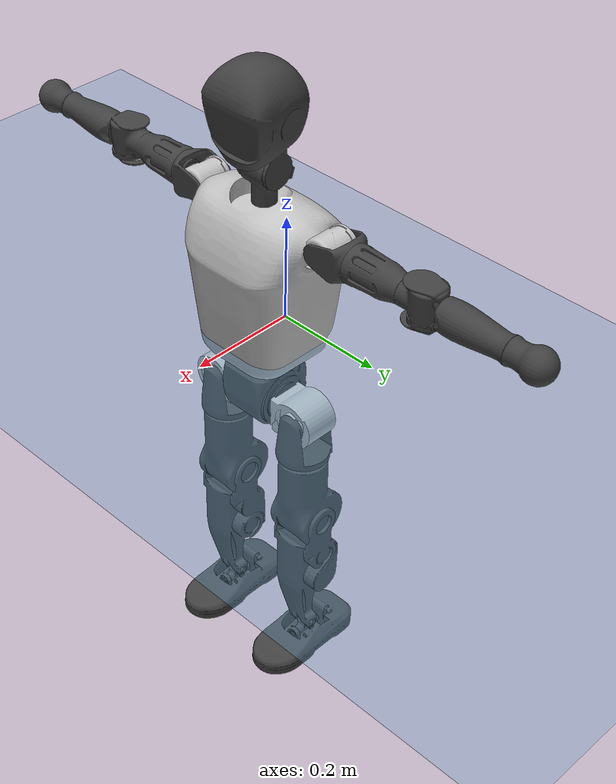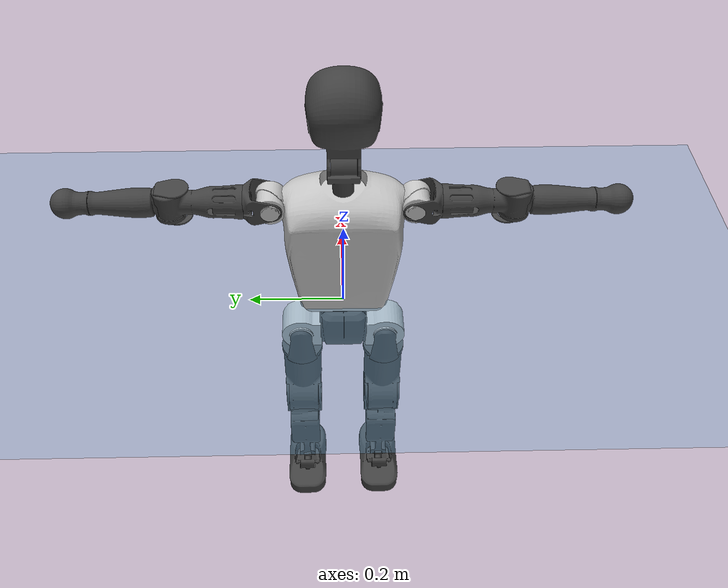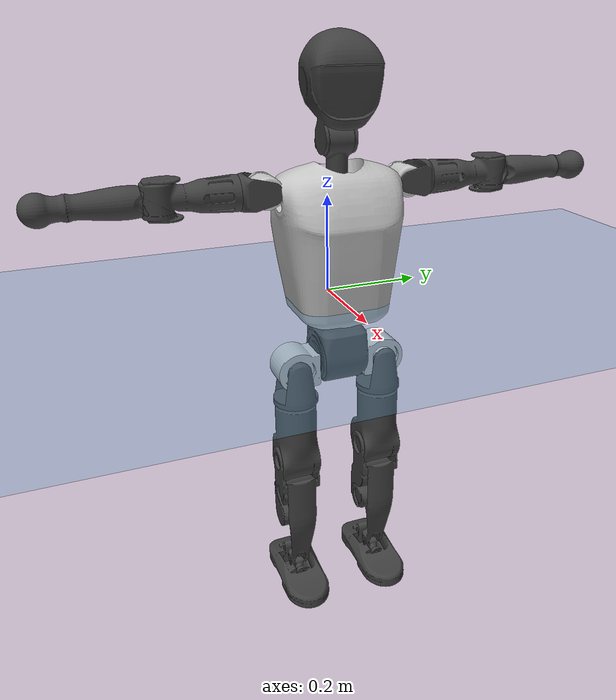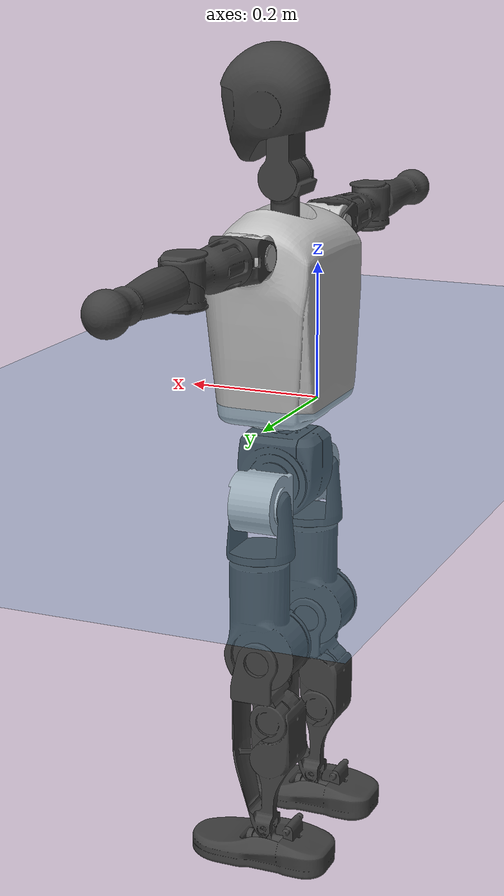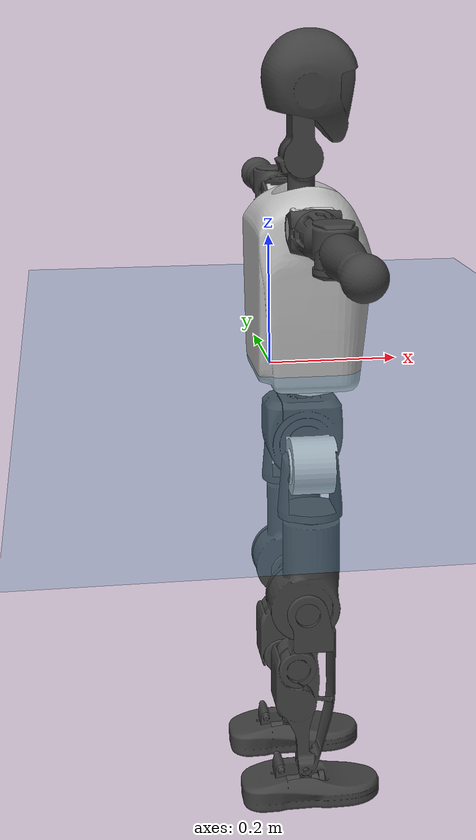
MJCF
<mujoco model="T1">
  <compiler angle="radian" assetdir="assets" balanceinertia="true" inertiafromgeom="false"/>

  <option timestep="0.005" density="1.2" viscosity="2e-05"/>

  <size nkey="1"/>

  <visual>
    <quality shadowsize="8192"/>
    <map shadowclip="0.5"/>
  </visual>

  <default>
    <default class="/">
      <joint armature="0.01" damping="0.01" frictionloss="0.1"/>
      <geom contype="0" conaffinity="0" group="1" solref="-1000 -80"/>
      <site size="0.01 0.005 0.005" group="5"/>
      <general forcelimited="true" biastype="affine" gainprm="25" biasprm="0 -25 -0.6"/>
      <default class="t1">
        <geom rgba="0.25 0.25 0.25 1"/>
        <default class="visual">
          <geom type="mesh" group="2"/>
        </default>
        <default class="collision">
          <geom group="3"/>
        </default>
        <default class="foot">
          <geom size="0.1115 0.05 0.015" type="box" condim="6" group="4" priority="1" solimp="0.015 1 0.015"/>
        </default>
        <default class="reward_collision_sphere">
          <geom group="5" rgba="1 0 0 1"/>
        </default>
      </default>
    </default>
  </default>

  <asset>
    <texture type="skybox" colorspace="auto" name="//unnamed_texture_0" builtin="gradient" rgb1="0.95 0.95 0.95" rgb2="0.95 0.95 0.95" width="100" height="600"/>
    <texture type="2d" colorspace="auto" name="texplane" builtin="checker" rgb1="0.345 0.575 0.748" rgb2="0.345 0.575 0.748" markrgb="1 1 1" width="512" height="512"/>
    <material name="MatPlane" class="/" texture="texplane" texuniform="true" texrepeat="2 2" specular="0.9"/>
    <mesh name="Trunk" class="/" file="Trunk.stl"/>
    <mesh name="H1" class="/" file="H1.stl"/>
    <mesh name="H2" class="/" file="H2.stl"/>
    <mesh name="AL1" class="/" file="AL1.stl"/>
    <mesh name="AL2" class="/" file="AL2.stl"/>
    <mesh name="AL3" class="/" file="AL3.stl"/>
    <mesh name="left_hand_link" class="/" file="left_hand_link.stl"/>
    <mesh name="AR1" class="/" file="AR1.stl"/>
    <mesh name="AR2" class="/" file="AR2.stl"/>
    <mesh name="AR3" class="/" file="AR3.stl"/>
    <mesh name="right_hand_link" class="/" file="right_hand_link.stl"/>
    <mesh name="Waist" class="/" file="Waist.stl"/>
    <mesh name="Hip_Pitch_Left" class="/" file="Hip_Pitch_Left.stl"/>
    <mesh name="Hip_Roll_Left" class="/" file="Hip_Roll_Left.stl"/>
    <mesh name="Hip_Yaw_Left" class="/" file="Hip_Yaw_Left.stl"/>
    <mesh name="Shank_Left" class="/" file="Shank_Left.stl"/>
    <mesh name="Ankle_Cross_Left" class="/" file="Ankle_Cross_Left.stl"/>
    <mesh name="left_foot_link" class="/" file="left_foot_link.stl"/>
    <mesh name="Hip_Pitch_Right" class="/" file="Hip_Pitch_Right.stl"/>
    <mesh name="Hip_Roll_Right" class="/" file="Hip_Roll_Right.stl"/>
    <mesh name="Hip_Yaw_Right" class="/" file="Hip_Yaw_Right.stl"/>
    <mesh name="Shank_Right" class="/" file="Shank_Right.stl"/>
    <mesh name="Ankle_Cross_Right" class="/" file="Ankle_Cross_Right.stl"/>
    <mesh name="right_foot_link" class="/" file="right_foot_link.stl"/>
  </asset>

  <worldbody>
    <geom name="floor" class="/" size="100 100 0.125" type="plane" group="0" material="MatPlane"/>
    <light name="toplight_shadow" class="/" pos="0 0 5" dir="0.0990148 0.0990148 -0.990148" type="directional" ambient="0.04 0.04 0.04" diffuse="0.55 0.55 0.55" specular="0.12 0.12 0.12"/>
    <light name="toplight_fill" class="/" pos="0 0 5" dir="0.0990148 0.0990148 -0.990148" type="directional" castshadow="false" ambient="0.04 0.04 0.04" diffuse="0.3 0.3 0.3" specular="0.08 0.08 0.08"/>
    <body name="trunk" childclass="t1" pos="0.000774046 -0.000368203 -0.000315338" quat="1 -5.64256e-05 0.000201193 -0.000177927">
      <inertial pos="0.0438427 -0.000458927 0.109553" quat="0.999953 -0.000229281 -0.00962327 0.000685984" mass="9.12817" diaginertia="0.0310333 0.0480767 0.0729105"/>
      <joint name="//unnamed_joint_0" type="free" armature="0" damping="0" frictionloss="0"/>
      <geom name="//unnamed_geom_1" class="visual" rgba="0.76 0.76 0.76 1" mesh="Trunk"/>
      <geom name="//unnamed_geom_2" class="collision" size="0.0690123 0.0920164 0.138025" pos="0.0482386 0 0.125974" type="box"/>
      <geom name="//unnamed_geom_3" class="reward_collision_sphere" size="0.105819" pos="0.0482386 0 0.104978"/>
      <geom name="//unnamed_geom_4" class="reward_collision_sphere" size="0.0138025" pos="0.0482386 0.0770722 0"/>
      <geom name="//unnamed_geom_5" class="reward_collision_sphere" size="0.0138025" pos="0.0482386 -0.0770722 0"/>
      <geom name="//unnamed_geom_6" class="reward_collision_sphere" size="0.0138025" pos="0.0482386 0.0970204 0.188961"/>
      <geom name="//unnamed_geom_7" class="reward_collision_sphere" size="0.0138025" pos="0.0482386 -0.0970204 0.188961"/>
      <site name="imu" pos="-0.00157202 0.000837619 -0.000257893" size="0.00920164"/>
      <camera name="track" pos="0 -1.81346 0" quat="0.707107 0.707107 0 0" mode="trackcom"/>
      <camera name="ego_camera" pos="0.0980852 0 0.440909" quat="-0.5 -0.5 0.5 0.5"/>
      <body name="H1" pos="0.0499703 0.000161722 0.255348" quat="1 6.16609e-05 3.90539e-05 1.20539e-05">
        <inertial pos="-0.0013159 -0.0022606 0.0599811" quat="0.761878 -0.0103749 -0.00469146 0.64762" mass="0.347804" diaginertia="8.25675e-05 0.000137489 0.000193094"/>
        <joint name="AAHead_yaw" pos="0 0 0" axis="-0.00119086 0.000110262 0.999999" range="-1.55349 1.57194" armature="0.00919731" damping="0.0078793" frictionloss="0.0990693"/>
        <geom name="//unnamed_geom_8" class="visual" mesh="H1"/>
        <body name="H2" pos="-0.000892899 -0.00017852 0.0642064" quat="1 4.72038e-06 -4.73521e-05 -6.40108e-05">
          <inertial pos="0.00579403 0.00115475 0.103801" quat="0.989053 0.102978 -0.0736259 -0.0758193" mass="0.487687" diaginertia="0.000689042 0.00116302 0.0022135"/>
          <joint name="Head_pitch" pos="0 0 0" axis="-0.00299695 -0.999995 0.000624964" range="-1.22302 0.354762" armature="0.00873572" damping="0.00667449" frictionloss="0.0923451"/>
          <geom name="//unnamed_geom_9" class="visual" mesh="H2"/>
          <geom name="//unnamed_geom_10" class="collision" size="0.0736131" pos="0.00803977 0 0.115476"/>
          <geom name="//unnamed_geom_11" class="reward_collision_sphere" size="0.0828148" pos="0.0160795 0 0.104978"/>
        </body>
      </body>
      <body name="AL1" pos="0.0471586 0.0971828 0.230335" quat="1 2.4942e-05 0.000458731 3.78933e-05">
        <inertial pos="0.000224024 0.0404726 0.000249668" quat="0.50589 0.499536 -0.50396 0.490471" mass="0.41229" diaginertia="0.00046013 0.000786343 0.000375904"/>
        <joint name="Left_Shoulder_Pitch" pos="0 0 0" axis="-0.00320203 0.999994 0.000868105" range="-3.30198 1.20377" armature="0.00931523" damping="0.00780226" frictionloss="0.0896018"/>
        <geom name="//unnamed_geom_12" class="visual" rgba="0.76 0.76 0.76 1" mesh="AL1"/>
        <body name="AL2" pos="0.000884209 0.043414 0.00096147" quat="1 1.29568e-05 -4.06652e-05 -2.35479e-05">
          <inertial pos="0.00267529 0.0351709 -0.000126249" quat="0.488056 0.511699 -0.487946 0.511736" mass="0.124515" diaginertia="0.00013478 0.000213011 0.000224372"/>
          <joint name="Left_Shoulder_Roll" pos="0 0 0" axis="-0.999996 0.000233105 0.00286113" range="-1.55308 1.72388" armature="0.00917287" damping="0.00448449" frictionloss="0.0901502"/>
          <geom name="//unnamed_geom_13" class="visual" mesh="AL2"/>
          <body name="AL3" pos="0.000946382 0.0548181 -0.000244989" quat="1 7.60868e-06 -6.46733e-06 1.01074e-05">
            <inertial pos="-0.00151084 0.077283 -0.000127584" quat="0.705999 0.708209 0.00227192 -0.000831683" mass="0.789898" diaginertia="0.00426859 0.00775947 0.000791323"/>
            <joint name="Left_Elbow_Pitch" pos="0 0 0" axis="-4.92353e-06 -1 0.000384167" range="-2.27617 2.26685" armature="0.00951754" damping="0.00967447" frictionloss="0.0899652"/>
            <geom name="//unnamed_geom_14" class="visual" mesh="AL3"/>
            <geom name="//unnamed_geom_15" class="collision" size="0.0276049 0.0690123" pos="0 0.0453366 0" quat="0.707105 0.707108 0 0" type="cylinder"/>
            <geom name="//unnamed_geom_16" class="reward_collision_sphere" size="0.0331259"/>
            <body name="left_hand_link" pos="0.00127784 0.133581 -0.000427555" quat="1 -5.97562e-05 -0.000287381 8.91436e-05">
              <inertial pos="9.74197e-05 0.100046 -0.000194012" quat="0.704659 0.709546 0.000738937 -0.00061484" mass="0.252979" diaginertia="0.00271774 0.00494655 0.000269778"/>
              <joint name="Left_Elbow_Yaw" pos="0 0 0" axis="0.00371993 0.0035567 0.999987" range="-2.45552 0.0169536" armature="0.00904152" damping="0.0120294" frictionloss="0.0916672"/>
              <geom name="//unnamed_geom_17" class="visual" mesh="left_hand_link"/>
              <geom name="//unnamed_geom_18" class="collision" size="0.0276049 0.0805144" pos="0 0.117875 0" quat="0.707105 0.707108 0 0" type="cylinder"/>
              <geom name="//unnamed_geom_19" class="reward_collision_sphere" size="0.0460082"/>
              <geom name="//unnamed_geom_20" class="reward_collision_sphere" size="0.0322057" pos="0 0.0997406 0"/>
              <geom name="//unnamed_geom_21" class="reward_collision_sphere" size="0.0322057" pos="0 0.194947 0"/>
            </body>
          </body>
        </body>
      </body>
      <body name="AR1" pos="0.0448332 -0.0964377 0.230465" quat="1 4.02282e-05 0.000493306 8.55562e-05">
        <inertial pos="-0.00138001 -0.0414085 0.001061" quat="0.505808 0.495574 -0.502268 0.496278" mass="0.417513" diaginertia="0.000463951 0.000791635 0.000377723"/>
        <joint name="Right_Shoulder_Pitch" pos="0 0 0" axis="0.00107466 -0.999996 -0.00269033" range="-1.22824 3.3107" armature="0.0089198" damping="0.00537959" frictionloss="0.0913999"/>
        <geom name="//unnamed_geom_22" class="visual" rgba="0.76 0.76 0.76 1" mesh="AR1"/>
        <body name="AR2" pos="-0.000575596 -0.040834 4.27703e-05" quat="1 0.000333114 0.00045582 9.56177e-05">
          <inertial pos="0.00386349 -0.034522 0.00131569" quat="0.510953 0.484811 -0.512327 0.491331" mass="0.127795" diaginertia="0.000137734 0.000216551 0.000225171"/>
          <joint name="Right_Shoulder_Roll" pos="0 0 0" axis="-0.999996 -0.00153942 0.00252592" stiffness="0.00374645" range="-1.73957 1.57744" armature="0.00883848" damping="0.00527099" frictionloss="0.0896851"/>
          <geom name="//unnamed_geom_23" class="visual" mesh="AR2"/>
          <body name="AR3" pos="-0.00057636 -0.0553217 0.000299827" quat="1 5.21521e-07 6.48308e-07 1.29675e-06">
            <inertial pos="0.00103558 -0.0774808 0.000580834" quat="0.707952 0.70626 -0.00086925 -0.00052604" mass="0.80034" diaginertia="0.00430143 0.00790695 0.000803646"/>
            <joint name="Right_Elbow_Pitch" pos="0 0 0" axis="-0.000127001 1 -4.76836e-05" stiffness="0.00201929" range="-2.27848 2.26955" armature="0.00920054" damping="0.00883087" frictionloss="0.0990621"/>
            <geom name="//unnamed_geom_24" class="visual" mesh="AR3"/>
            <geom name="//unnamed_geom_25" class="collision" size="0.0276049 0.0690123" pos="0 -0.0453366 0" quat="0.707105 0.707108 0 0" type="cylinder"/>
            <geom name="//unnamed_geom_26" class="reward_collision_sphere" size="0.0331259"/>
            <body name="right_hand_link" pos="0.000219571 -0.132623 -0.000158674" quat="1 3.8963e-05 6.34515e-06 -1.44687e-05">
              <inertial pos="-0.000227571 -0.0995946 0.000411163" quat="0.706416 0.707795 0.000391114 0.00139111" mass="0.258879" diaginertia="0.00277923 0.00506274 0.000281304"/>
              <joint name="Right_Elbow_Yaw" pos="0 0 0" axis="-0.00362443 0.000161838 0.999993" stiffness="0.000146503" range="0.00455949 2.43904" armature="0.00960474" damping="0.00654505" frictionloss="0.087867"/>
              <geom name="//unnamed_geom_27" class="visual" mesh="right_hand_link"/>
              <geom name="//unnamed_geom_28" class="collision" size="0.0276049 0.0805144" pos="0 -0.117875 0" quat="0.707105 0.707108 0 0" type="cylinder"/>
              <geom name="//unnamed_geom_29" class="reward_collision_sphere" size="0.0460082"/>
              <geom name="//unnamed_geom_30" class="reward_collision_sphere" size="0.0322057" pos="0 -0.0997406 0"/>
              <geom name="//unnamed_geom_31" class="reward_collision_sphere" size="0.0322057" pos="0 -0.194947 0"/>
            </body>
          </body>
        </body>
      </body>
      <body name="Waist" pos="0.0497375 0.000108831 -0.121168" quat="1 0.000470707 -2.56746e-05 0.000413768">
        <inertial pos="0.000789777 -0.000921255 0.00842444" quat="0.983247 0.000572624 -0.182263 -0.00242122" mass="1.99985" diaginertia="0.00181036 0.00327037 0.00605637"/>
        <joint name="Waist" pos="0 0 0" axis="-0.00155728 0.00346135 0.999993" range="-1.57015 1.57393" armature="0.00920057" damping="0.00890141" frictionloss="0.0929319"/>
        <geom name="//unnamed_geom_32" class="visual" mesh="Waist"/>
        <body name="Hip_Pitch_Left" pos="0.000941903 0.0958501 0.000937167" quat="1 0.000134005 -0.000218918 4.65869e-05">
          <inertial pos="0.00163782 -0.0070103 -0.0192248" quat="0.975759 0.218361 0.0144142 0.002291" mass="0.788599" diaginertia="0.000595112 0.000883376 0.00158501"/>
          <joint name="Left_Hip_Pitch" pos="0 0 0" axis="-0.000113979 0.999989 0.00460111" range="-1.8153 1.56471" armature="0.00878536" damping="0.00672321" frictionloss="0.0909561"/>
          <geom name="//unnamed_geom_33" class="visual" rgba="0.76 0.76 0.76 1" mesh="Hip_Pitch_Left"/>
          <body name="Hip_Roll_Left" pos="0.000392542 0.000782251 -0.023727" quat="1 0.000204653 -0.000154658 -0.000242541">
            <inertial pos="0.000868691 -0.0013103 -0.0554633" quat="0.707294 -0.00591641 -0.00589143 0.70687" mass="0.300901" diaginertia="0.000584592 0.000921183 0.000671753"/>
            <joint name="Left_Hip_Roll" pos="0 0 0" axis="-0.999979 -0.00636021 0.00107012" range="-1.57668 0.183817" armature="0.0093102" damping="0.00166834" frictionloss="0.0911524"/>
            <geom name="//unnamed_geom_34" class="visual" mesh="Hip_Roll_Left"/>
            <geom name="//unnamed_geom_35" class="reward_collision_sphere" size="0.050609"/>
            <body name="Hip_Yaw_Left" pos="-0.000680841 0.00051466 -0.087034" quat="1 -0.000287584 0.000168947 0.00022474">
              <inertial pos="-0.00499282 -0.000412833 -0.0934247" quat="0.696306 -0.0316816 -0.0318835 0.716336" mass="1.69638" diaginertia="0.00868158 0.0152222 0.00325808"/>
              <joint name="Left_Hip_Yaw" pos="0 0 0" axis="-0.0007645 -0.000630525 -1" range="-1.0326 0.995925" armature="0.00910514" damping="0.0078386" frictionloss="0.0929374"/>
              <geom name="//unnamed_geom_36" class="visual" mesh="Hip_Yaw_Left"/>
              <geom name="//unnamed_geom_37" class="collision" size="0.0460082 0.0736131" type="cylinder"/>
              <body name="Shank_Left" pos="-0.0120578 -4.3272e-05 -0.143892" quat="1 -2.82023e-05 2.13925e-05 1.06579e-05">
                <inertial pos="-0.00457315 0.000467957 -0.130647" quat="0.997565 0.00579079 -0.0240149 0.0652258" mass="1.35468" diaginertia="0.0116075 0.0209072 0.00237924"/>
                <joint name="Left_Knee_Pitch" pos="0 0 0" axis="0.0056365 0.999984 -0.000936899" range="-0.00120317 2.35457" armature="0.00894192" damping="0.0100691" frictionloss="0.0929969"/>
                <geom name="//unnamed_geom_38" class="visual" mesh="Shank_Left"/>
                <geom name="//unnamed_geom_39" class="collision" size="0.0460082 0.0690123" pos="0 0 -0.125974" type="cylinder"/>
                <geom name="//unnamed_geom_40" class="reward_collision_sphere" size="0.0598107"/>
                <body name="Ankle_Cross_Left" pos="-2.23304e-05 -0.000254072 -0.292992" quat="1 -9.8903e-05 0.000516443 -7.21997e-05">
                  <inertial pos="-0.0043491 0.000593747 -0.00934245" quat="0.442146 0.55165 0.551801 0.442386" mass="0.0573598" diaginertia="9.8735e-06 1.57691e-05 1.43541e-05"/>
                  <joint name="Left_Ankle_Pitch" pos="0 0 0" axis="0.00170185 0.999998 0.000382264" range="-0.868828 0.346552" armature="0.00987115" damping="0.0103745" frictionloss="0.0909764"/>
                  <geom name="//unnamed_geom_41" class="visual" mesh="Ankle_Cross_Left"/>
                  <body name="left_foot_link" pos="0.000460847 0.00018236 -0.0123193" quat="1 0.000158601 -0.000555808 0.000441522">
                    <inertial pos="7.36902e-05 0.00101669 -0.010063" quat="0.00342198 0.61988 -0.00046719 0.784689" mass="0.539898" diaginertia="0.000931299 0.00147531 0.00282126"/>
                    <joint name="Left_Ankle_Roll" pos="0 0 0" axis="-0.999949 0.0100048 -0.0010906" stiffness="4.08576e-05" range="-0.445838 0.426769" armature="0.00927128" damping="0.00749989" frictionloss="0.091336"/>
                    <geom name="//unnamed_geom_42" class="visual" mesh="left_foot_link"/>
                    <geom name="left_foot" class="foot" size="0.10278 0.0461523 0.013607" pos="0.00803977 0 -0.0157467"/>
                    <geom name="//unnamed_geom_44" class="reward_collision_sphere" size="0.0478485" pos="0.00803977 0 -0.0157467"/>
                    <geom name="//unnamed_geom_45" class="reward_collision_sphere" size="0.0276049" pos="0.0763778 -0.0208548 -0.0157467"/>
                    <geom name="//unnamed_geom_46" class="reward_collision_sphere" size="0.0276049" pos="-0.0562784 -0.0208548 -0.0157467"/>
                    <site name="left_foot" class="foot" pos="0.00803977 0 -0.0157467" size="0.00920164"/>
                  </body>
                </body>
              </body>
            </body>
          </body>
        </body>
        <body name="Hip_Pitch_Right" pos="0.00118261 -0.0952672 -0.000972279" quat="1 4.82317e-05 6.00443e-05 6.55083e-05">
          <inertial pos="-0.000608784 0.00631799 -0.0183188" quat="0.973382 -0.22864 0.0150739 -0.00487849" mass="0.793204" diaginertia="0.000603568 0.000892391 0.00157498"/>
          <joint name="Right_Hip_Pitch" pos="0 0 0" axis="0.000420963 -0.999999 0.00100795" range="-1.57438 1.81312" armature="0.00953752" damping="0.00172314" frictionloss="0.0883114"/>
          <geom name="//unnamed_geom_47" class="visual" rgba="0.76 0.76 0.76 1" mesh="Hip_Pitch_Right"/>
          <body name="Hip_Roll_Right" pos="-0.000362097 0.000301229 -0.0221053" quat="1 0.000181561 5.78924e-05 0.000107884">
            <inertial pos="0.00169568 -0.000538391 -0.0567537" quat="0.707253 -0.00594995 -0.00755996 0.706895" mass="0.294902" diaginertia="0.00058953 0.000927149 0.000654529"/>
            <joint name="Right_Hip_Roll" pos="0 0 0" axis="-0.999996 7.76797e-05 0.00277119" stiffness="3.91071e-05" range="-0.21207 1.565" armature="0.0093314" damping="0.00502599" frictionloss="0.0894919"/>
            <geom name="//unnamed_geom_48" class="visual" mesh="Hip_Roll_Right"/>
            <geom name="//unnamed_geom_49" class="reward_collision_sphere" size="0.050609"/>
            <body name="Hip_Yaw_Right" pos="-0.000941522 -0.000530625 -0.0865901" quat="1 -4.74929e-05 1.48545e-05 -3.90043e-05">
              <inertial pos="-0.00581742 -0.000351067 -0.0945564" quat="0.713708 -0.0319931 -0.0346281 0.698855" mass="1.68947" diaginertia="0.0087594 0.0154804 0.00335443"/>
              <joint name="Right_Hip_Yaw" pos="0 0 0" axis="0.00250461 0.00223233 -0.999994" stiffness="0.00354725" range="-1.00247 1.00155" armature="0.00942556" damping="0.0150804" frictionloss="0.0945704"/>
              <geom name="//unnamed_geom_50" class="visual" mesh="Hip_Yaw_Right"/>
              <geom name="//unnamed_geom_51" class="collision" size="0.0460082 0.0736131" type="cylinder"/>
              <body name="Shank_Right" pos="-0.0115626 -0.000341577 -0.141998" quat="1 -9.20003e-05 -8.72143e-05 -0.000167419">
                <inertial pos="-0.00533154 -0.000273682 -0.128957" quat="0.999255 7.29036e-06 -0.0246211 -0.0297055" mass="1.40636" diaginertia="0.0119591 0.0214924 0.00249701"/>
                <joint name="Right_Knee_Pitch" pos="0 0 0" axis="0.00270569 -0.999996 -1.93572e-06" range="-2.35451 -0.00821022" armature="0.0091985" damping="0.00494547" frictionloss="0.089688"/>
                <geom name="//unnamed_geom_52" class="visual" mesh="Shank_Right"/>
                <geom name="//unnamed_geom_53" class="collision" size="0.0460082 0.0690123" pos="0 0 -0.125974" type="cylinder"/>
                <geom name="//unnamed_geom_54" class="reward_collision_sphere" size="0.0598107"/>
                <body name="Ankle_Cross_Right" pos="0.000939586 -0.000650344 -0.293991" quat="1 3.7938e-05 4.80674e-05 -7.78827e-06">
                  <inertial pos="-0.00253309 -0.000675202 -0.0083355" quat="0.442854 0.551133 0.55112 0.443171" mass="0.0572302" diaginertia="9.78731e-06 1.58088e-05 1.4526e-05"/>
                  <joint name="Right_Ankle_Pitch" pos="0 0 0" axis="-0.00127632 -0.999999 -0.000715512" range="-0.365513 0.873576" armature="0.0092185" damping="0.00217612" frictionloss="0.092842"/>
                  <geom name="//unnamed_geom_55" class="visual" mesh="Ankle_Cross_Right"/>
                  <body name="right_foot_link" pos="-0.000749167 -0.000761644 -0.0100484" quat="1 2.63119e-06 4.7367e-06 4.00121e-05">
                    <inertial pos="-1.45923e-05 0.000182344 -0.0109513" quat="-0.000610806 0.620905 -0.00148511 0.783884" mass="0.529192" diaginertia="0.000892801 0.00143595 0.00269343"/>
                    <joint name="Right_Ankle_Roll" pos="0 0 0" axis="-0.999995 -0.00205564 -0.00253052" range="-0.439527 0.458217" armature="0.00842255" damping="0" frictionloss="0.0899317"/>
                    <geom name="//unnamed_geom_56" class="visual" mesh="right_foot_link"/>
                    <geom name="right_foot" class="foot" size="0.0995013 0.0462401 0.0140351" pos="0.00803977 0 -0.0157467"/>
                    <geom name="//unnamed_geom_58" class="reward_collision_sphere" size="0.0368066"/>
                    <geom name="//unnamed_geom_59" class="reward_collision_sphere" size="0.0276049" pos="0.00803977 0 -0.0157467"/>
                    <geom name="//unnamed_geom_60" class="reward_collision_sphere" size="0.0276049" pos="0.0763778 0.0208548 -0.0157467"/>
                    <geom name="//unnamed_geom_61" class="reward_collision_sphere" size="0.0276049" pos="-0.0562784 0.0208548 -0.0157467"/>
                    <site name="right_foot" class="foot" pos="0.00803977 0 -0.0157467" size="0.00920164"/>
                  </body>
                </body>
              </body>
            </body>
          </body>
        </body>
      </body>
    </body>
  </worldbody>

  <contact>
    <pair class="/" geom1="floor" geom2="left_foot" name="//unnamed_contact_0"/>
    <pair class="/" geom1="floor" geom2="right_foot" name="//unnamed_contact_1"/>
  </contact>

  <actuator>
    <general name="AAHead_yaw" class="/" joint="AAHead_yaw" forcerange="-6.39844 6.39844" gainprm="23.4962" biasprm="0 -23.4962 -0.527731"/>
    <general name="Head_pitch" class="/" joint="Head_pitch" forcerange="-6.37003 6.37003" gainprm="23.4962" biasprm="0 -23.4962 -0.527731"/>
    <general name="Left_Shoulder_Pitch" class="/" joint="Left_Shoulder_Pitch" forcerange="-15.5407 15.5407" gainprm="23.4962" biasprm="0 -23.4962 -0.527731"/>
    <general name="Left_Shoulder_Roll" class="/" joint="Left_Shoulder_Roll" forcerange="-16.1432 16.1432" gainprm="23.4962" biasprm="0 -23.4962 -0.527731"/>
    <general name="Left_Elbow_Pitch" class="/" joint="Left_Elbow_Pitch" forcerange="-16.2302 16.2302" gainprm="23.4962" biasprm="0 -23.4962 -0.527731"/>
    <general name="Left_Elbow_Yaw" class="/" joint="Left_Elbow_Yaw" forcerange="-16.618 16.618" gainprm="23.4962" biasprm="0 -23.4962 -0.527731"/>
    <general name="Right_Shoulder_Pitch" class="/" joint="Right_Shoulder_Pitch" forcerange="-16.4478 16.4478" gainprm="23.4962" biasprm="0 -23.4962 -0.527731"/>
    <general name="Right_Shoulder_Roll" class="/" joint="Right_Shoulder_Roll" forcerange="-16.3026 16.3026" gainprm="23.4962" biasprm="0 -23.4962 -0.527731"/>
    <general name="Right_Elbow_Pitch" class="/" joint="Right_Elbow_Pitch" forcerange="-16.8694 16.8694" gainprm="23.4962" biasprm="0 -23.4962 -0.527731"/>
    <general name="Right_Elbow_Yaw" class="/" joint="Right_Elbow_Yaw" forcerange="-16.5942 16.5942" gainprm="23.4962" biasprm="0 -23.4962 -0.527731"/>
    <general name="Waist" class="/" joint="Waist" forcerange="-27.6806 27.6806" gainprm="23.4962" biasprm="0 -23.4962 -0.527731"/>
    <general name="Left_Hip_Pitch" class="/" joint="Left_Hip_Pitch" forcerange="-42.0691 42.0691" gainprm="23.4962" biasprm="0 -23.4962 -0.527731"/>
    <general name="Left_Hip_Roll" class="/" joint="Left_Hip_Roll" forcerange="-26.8468 26.8468" gainprm="23.4962" biasprm="0 -23.4962 -0.527731"/>
    <general name="Left_Hip_Yaw" class="/" joint="Left_Hip_Yaw" forcerange="-28.5512 28.5512" gainprm="23.4962" biasprm="0 -23.4962 -0.527731"/>
    <general name="Left_Knee_Pitch" class="/" joint="Left_Knee_Pitch" forcerange="-55.1239 55.1239" gainprm="23.4962" biasprm="0 -23.4962 -0.527731"/>
    <general name="Left_Ankle_Pitch" class="/" joint="Left_Ankle_Pitch" forcerange="-18.4567 18.4567" gainprm="23.4962" biasprm="0 -23.4962 -0.527731"/>
    <general name="Left_Ankle_Roll" class="/" joint="Left_Ankle_Roll" forcerange="-13.569 13.569" gainprm="23.4962" biasprm="0 -23.4962 -0.527731"/>
    <general name="Right_Hip_Pitch" class="/" joint="Right_Hip_Pitch" forcerange="-42.3226 42.3226" gainprm="23.4962" biasprm="0 -23.4962 -0.527731"/>
    <general name="Right_Hip_Roll" class="/" joint="Right_Hip_Roll" forcerange="-29.0106 29.0106" gainprm="23.4962" biasprm="0 -23.4962 -0.527731"/>
    <general name="Right_Hip_Yaw" class="/" joint="Right_Hip_Yaw" forcerange="-27.457 27.457" gainprm="23.4962" biasprm="0 -23.4962 -0.527731"/>
    <general name="Right_Knee_Pitch" class="/" joint="Right_Knee_Pitch" forcerange="-53.1928 53.1928" gainprm="23.4962" biasprm="0 -23.4962 -0.527731"/>
    <general name="Right_Ankle_Pitch" class="/" joint="Right_Ankle_Pitch" forcerange="-17.5267 17.5267" gainprm="23.4962" biasprm="0 -23.4962 -0.527731"/>
    <general name="Right_Ankle_Roll" class="/" joint="Right_Ankle_Roll" forcerange="-13.8034 13.8034" gainprm="23.4962" biasprm="0 -23.4962 -0.527731"/>
  </actuator>

  <sensor>
    <gyro site="imu" name="imu_angular_velocity"/>
    <velocimeter site="imu" name="imu_linear_velocity"/>
    <framelinvel objtype="site" objname="left_foot" name="left_foot_global_linear_velocity"/>
    <framelinvel objtype="site" objname="right_foot" name="right_foot_global_linear_velocity"/>
  </sensor>

  <keyframe>
    <key name="home" qpos="0 0 0.6385 1 0 0 0 0 0 0 1.4 0 -0.4 0 -1.4 0 0.4 0 -0.4 0 0 0.8 -0.4 0 0.4 0 0 -0.8 0.4 0"/>
  </keyframe>
</mujoco>
